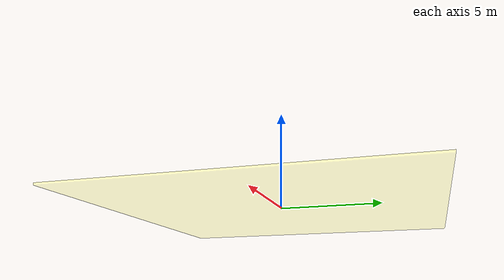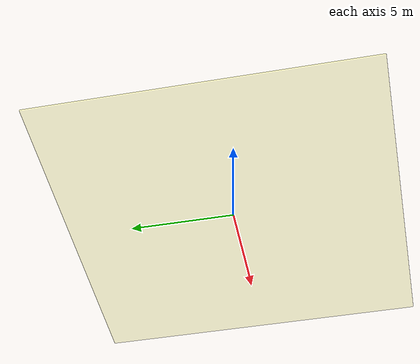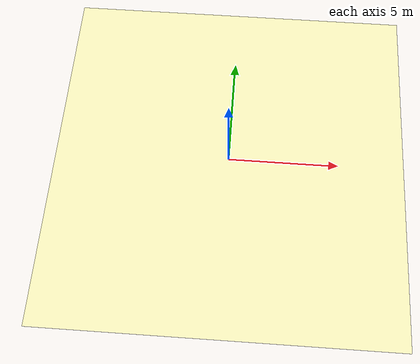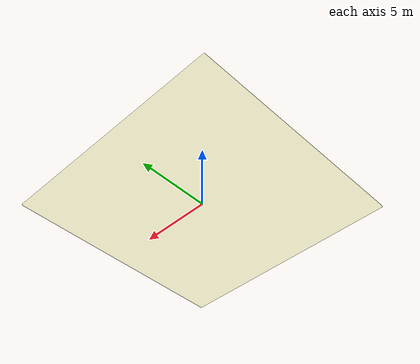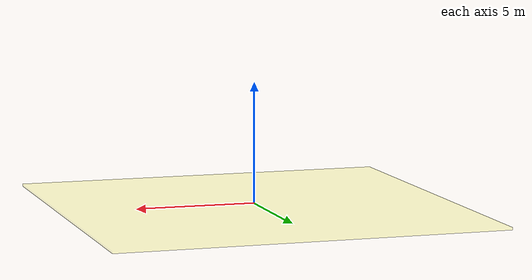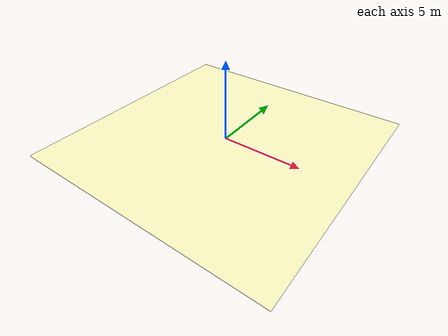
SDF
<?xml version="1.0"?>
<sdf version="1.7">
  <model name="floor">
    <!-- note that there is (intentionally) no visual geometry; only collision
    geometry -->
    <link name="box">
      <inertial>
        <mass>100.0</mass>
        <inertia>
          <ixx>10</ixx>
          <ixy>0</ixy>
          <ixz>0</ixz>
          <iyy>10</iyy>
          <iyz>0</iyz>
          <izz>10</izz>
        </inertia>
      </inertial>
      <collision name="bottom">
        <pose>0 0 -0.1 0 0 0</pose>
        <geometry>
          <box>
            <size>16 16 0.1</size>
          </box>
        </geometry>
      </collision>
      <visual name="bottom">
        <pose>0 0 -0.1 0 0 0</pose>
        <geometry>
          <box>
            <size>16 16 0.1</size>
          </box>
        </geometry>
        <material>
          <ambient>1 1 0 .1</ambient>
          <diffuse>1 1 0 .1</diffuse>
        </material>

      </visual>
      <collision name="front">
        <pose>8 0 .15 0 0 0</pose>
        <geometry>
          <box>
            <size>.1 4 0.3</size>
          </box>
        </geometry>
      </collision>
      <collision name="back">
        <pose>-8 0 .15 0 0 0</pose>
        <geometry>
          <box>
            <size>.1 4 0.3</size>
          </box>
        </geometry>
      </collision>
      <collision name="left">
        <pose>0 8 .15 0 0 0</pose>
        <geometry>
          <box>
            <size>4 .1 0.3</size>
          </box>
        </geometry>
      </collision>
      <collision name="right">
        <pose>0 -8 .15 0 0 0</pose>
        <geometry>
          <box>
            <size>4 .1 0.3</size>
          </box>
        </geometry>
      </collision>

    </link>
  </model>
</sdf>
